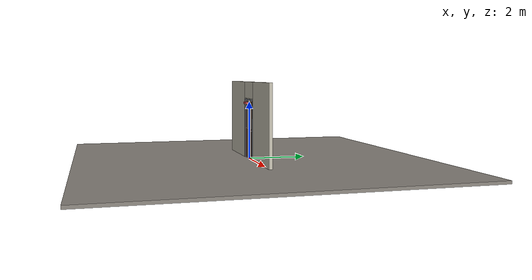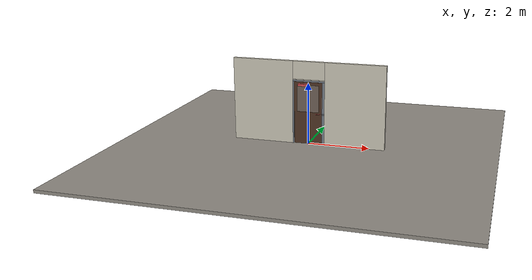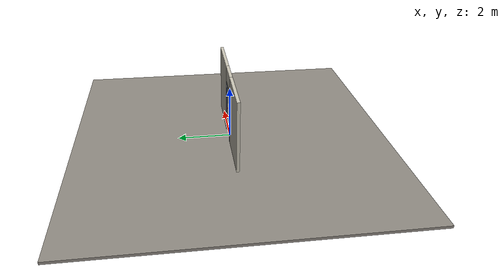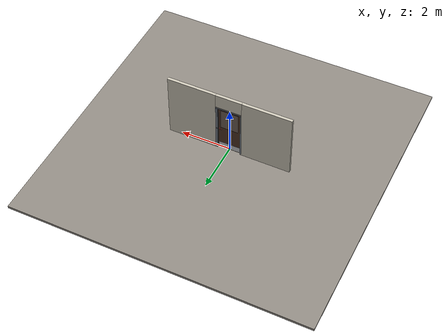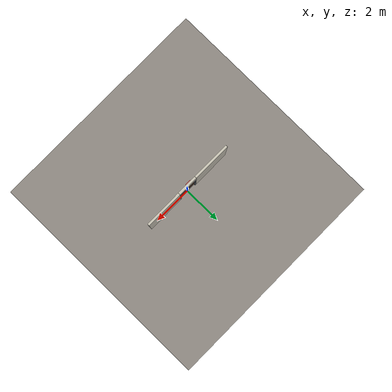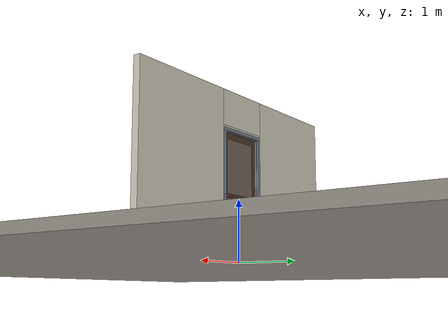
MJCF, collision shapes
<?xml version="1.0" ?>
<mujoco model="db0826_swing_single_simple">
  <compiler angle="radian" meshdir="../../hardware" texturedir="../../textures" autolimits="true" inertiafromgeom="false"/>
  <option timestep="0.002" integrator="implicitfast" cone="elliptic" impratio="10" noslip_iterations="3">
    <flag multiccd="enable"/>
  </option>
  <size memory="16M"/>
  <default>
    <geom condim="4" solref="0.005 1" solimp="0.95 0.99 0.001"/>
    <joint solreflimit="0.005 1" solimplimit="0.95 0.99 0.001"/>
    <tendon solreflimit="0.005 1"/>
    <equality solref="0.002 1"/>
  </default>
  <visual>
    <headlight ambient="0.4 0.4 0.4" diffuse="0.7 0.7 0.7" specular="0.2 0.2 0.2"/>
    <quality shadowsize="4096"/>
    <map znear="0.01" zfar="60"/>
  </visual>
  <asset>
    <mesh name="closer_body_fdc4667657" file="closer_body_fdc4667657.obj"/>
    <mesh name="hinge_1cb808d647" file="hinge_1cb808d647.obj"/>
    <mesh name="hinge_jamb_7842e12854" file="hinge_jamb_7842e12854.obj"/>
    <mesh name="lever_6268dcb28c" file="lever_6268dcb28c.obj"/>
    <material name="mat_floor" rgba="0.55 0.53 0.5 1" specular="0.2" shininess="0.15" reflectance="0"/>
    <material name="mat_wall" rgba="0.78 0.76 0.7 1" specular="0.2" shininess="0.1" reflectance="0"/>
    <material name="mat_leaf" rgba="0.3 0.2 0.14 1" specular="0.2" shininess="0.34" reflectance="0"/>
    <material name="mat_glass" rgba="0.85 0.92 0.95 0.25" specular="0.2" shininess="0.95" reflectance="0.1"/>
    <material name="mat_hinge" rgba="0.65 0.66 0.68 1" specular="0.74" shininess="0.5" reflectance="0.36"/>
    <material name="mat_op_stainless" rgba="0.75 0.76 0.77 1" specular="0.8" shininess="0.65" reflectance="0.4"/>
    <material name="mat_trim" rgba="0.85 0.66 0.3 1" specular="0.8" shininess="0.75" reflectance="0.4"/>
    <material name="mat_bolt" rgba="0.85 0.66 0.3 1" specular="0.8" shininess="0.75" reflectance="0.4"/>
    <material name="mat_frame" rgba="0.45 0.48 0.52 1" specular="0.32" shininess="0.6" reflectance="0.08"/>
    <material name="mat_closer" rgba="0.22 0.17 0.13 1" specular="0.8" shininess="0.6" reflectance="0.4"/>
    <material name="mat_kick" rgba="0.75 0.76 0.77 1" specular="0.8" shininess="0.65" reflectance="0.4"/>
    <texture name="skybox" type="skybox" builtin="gradient" rgb1="0.6 0.7 0.85" rgb2="0.9 0.92 0.95" width="256" height="256"/>
  </asset>
  <worldbody>
    <light name="sun" pos="1.5 -2.5 4" dir="-0.3 0.5 -0.8" directional="true" diffuse="0.8 0.8 0.8" specular="0.3 0.3 0.3" castshadow="true"/>
    <light name="fill" pos="-1.5 2.5 3" dir="0.3 -0.5 -0.7" directional="true" diffuse="0.35 0.35 0.4" castshadow="false"/>
    <camera name="robot_view" pos="0 -2.513687 1.734312" xyaxes="1 0 0 0 0.26963 0.962964" fovy="52"/>
    <camera name="far_view" pos="0 2.570688 1.734312" xyaxes="-1 0 0 0 -0.26963 0.962964" fovy="52"/>
    <camera name="iso" pos="1.932062 -2.106937 2.141063" xyaxes="0.741536 0.670913 0 -0.242917 0.268487 0.932151" fovy="46"/>
    <camera name="detail_handle" pos="0.4705 -0.877 1.296" xyaxes="0.97561 0.219512 0 -0.070934 0.315262 0.94635" fovy="38"/>
    <geom name="floor" type="box" size="6 6 0.05" pos="0 0 -0.05" material="mat_floor" group="0" contype="1" conaffinity="1" friction="0.8 0.005 0.0001" density="2400"/>
    <geom name="wall_left" type="box" size="0.99475 0.0575 1.35" pos="-1.50525 0.0285 1.35" material="mat_wall" group="0" contype="1" conaffinity="1" friction="0.6 0.005 0.0001" density="800"/>
    <geom name="wall_right" type="box" size="0.97975 0.0575 1.35" pos="1.52025 0.0285 1.35" material="mat_wall" group="0" contype="1" conaffinity="1" friction="0.6 0.005 0.0001" density="800"/>
    <geom name="wall_header" type="box" size="0.5255 0.0575 0.2875" pos="0.015 0.0285 2.4125" material="mat_wall" group="0" contype="1" conaffinity="1" friction="0.6 0.005 0.0001" density="800"/>
    <geom name="hinge_0_jamb" type="mesh" mesh="hinge_jamb_7842e12854" pos="-0.4575 -0.029 0.259" material="mat_hinge" group="1" contype="0" conaffinity="0" density="7850"/>
    <geom name="hinge_1_jamb" type="mesh" mesh="hinge_jamb_7842e12854" pos="-0.4575 -0.029 1.025" material="mat_hinge" group="1" contype="0" conaffinity="0" density="7850"/>
    <geom name="hinge_2_jamb" type="mesh" mesh="hinge_jamb_7842e12854" pos="-0.4575 -0.029 1.861" material="mat_hinge" group="1" contype="0" conaffinity="0" density="7850"/>
    <geom name="jamb_hinge" type="box" size="0.025 0.0575 1.0225" pos="-0.4855 0.0285 1.0225" material="mat_frame" group="0" contype="1" conaffinity="1" friction="0.6 0.005 0.0001" density="300"/>
    <geom name="strike_1016_wall_n" type="box" size="0.04 0.03825 0.0183" pos="0.5005 0.04775 1.016" material="mat_frame" group="0" contype="1" conaffinity="1" friction="0.6 0.005 0.0001" density="300"/>
    <geom name="strike_1016_wall_p" type="box" size="0.04 0.008 0.0183" pos="0.5005 -0.0175 1.016" material="mat_frame" group="0" contype="1" conaffinity="1" friction="0.6 0.005 0.0001" density="300"/>
    <geom name="strike_1016_ramp" type="box" size="0.04 0.018028 0.0183" pos="0.503782 -0.018312 1.016" quat="0.957092 0 0 0.289784" material="mat_frame" group="0" contype="1" conaffinity="1" friction="0.12 0.005 0.0001" density="300"/>
    <geom name="strike_1016_back" type="box" size="0.0285 0.0095 0.0183" pos="0.512 0 1.016" material="mat_frame" group="0" contype="1" conaffinity="1" friction="0.6 0.005 0.0001" density="300"/>
    <geom name="jamb_strike_0" type="box" size="0.04 0.0575 0.49885" pos="0.5005 0.0285 0.49885" material="mat_frame" group="0" contype="1" conaffinity="1" friction="0.6 0.005 0.0001" density="300"/>
    <geom name="jamb_strike_1" type="box" size="0.04 0.0575 0.50535" pos="0.5005 0.0285 1.53965" material="mat_frame" group="0" contype="1" conaffinity="1" friction="0.6 0.005 0.0001" density="300"/>
    <geom name="jamb_head" type="box" size="0.5255 0.0575 0.025" pos="0.015 0.0285 2.07" material="mat_frame" group="0" contype="1" conaffinity="1" friction="0.6 0.005 0.0001" density="300"/>
    <geom name="head_stud" type="box" size="0.5255 0.0575 0.015" pos="0.015 0.0285 2.11" material="mat_wall" group="0" contype="1" conaffinity="1" friction="0.6 0.005 0.0001" density="500"/>
    <geom name="stop_hinge" type="box" size="0.0055 0.016 1.0225" pos="-0.455 0.0385 1.0225" material="mat_frame" group="0" contype="1" conaffinity="1" friction="0.6 0.005 0.0001" density="300"/>
    <geom name="stop_strike" type="box" size="0.0055 0.016 1.0225" pos="0.455 0.0385 1.0225" material="mat_frame" group="0" contype="1" conaffinity="1" friction="0.6 0.005 0.0001" density="300"/>
    <geom name="stop_head" type="box" size="0.4605 0.016 0.0055" pos="0 0.0385 2.0395" material="mat_frame" group="0" contype="1" conaffinity="1" friction="0.6 0.005 0.0001" density="300"/>
    <site name="approach_point" pos="0 -1.5 0" quat="1 0 0 0" size="0.05" rgba="0.2 0.9 0.2 0.5" group="4"/>
    <site name="goal_point" pos="0 1.5 0" quat="1 0 0 0" size="0.05" rgba="0.2 0.9 0.2 0.5" group="4"/>
    <site name="door_plane_center" pos="0 0 1.0225" quat="1 0 0 0" size="0.02" rgba="0.2 0.9 0.2 0.5" group="4"/>
    <body name="leaf" pos="-0.4605 0 0">
      <inertial pos="0.41573 -0.017125 1.216101" mass="56.089685" quat="-0.494817 0.468407 0.515429 0.519696" diaginertia="3.268739291 25.81439493 28.985503653"/>
      <joint name="leaf_hinge" type="hinge" axis="0 0 -1" pos="0.003 -0.029 0" limited="true" range="0 1.570796" damping="12.25611" frictionloss="1.115532" stiffness="11.567381" springref="-1.882881" armature="0.02"/>
      <geom name="leaf_slab" type="box" size="0.457 0.022 1.016" pos="0.46 0 1.025" material="mat_leaf" group="0" contype="1" conaffinity="1" friction="0.35 0.005 0.0001" density="1"/>
      <geom name="leaf_glass_0" type="box" size="0.35646 0.0228 0.43688" pos="0.46 0 1.50252" material="mat_glass" group="1" contype="0" conaffinity="0" density="1"/>
      <geom name="hinge_0" type="mesh" mesh="hinge_1cb808d647" pos="0.003 -0.029 0.259" material="mat_hinge" group="1" contype="0" conaffinity="0" density="7850"/>
      <geom name="hinge_1" type="mesh" mesh="hinge_1cb808d647" pos="0.003 -0.029 1.025" material="mat_hinge" group="1" contype="0" conaffinity="0" density="7850"/>
      <geom name="hinge_2" type="mesh" mesh="hinge_1cb808d647" pos="0.003 -0.029 1.861" material="mat_hinge" group="1" contype="0" conaffinity="0" density="7850"/>
      <geom name="leaf_latch_bolt_faceplate" type="box" size="0.0006 0.014 0.0283" pos="0.9164 0 1.016" material="mat_bolt" group="1" contype="0" conaffinity="0" density="8500"/>
      <geom name="closer_body" type="mesh" mesh="closer_body_fdc4667657" pos="0.3 -0.022 1.952" quat="0.707107 0.707107 0 0" material="mat_closer" group="1" contype="0" conaffinity="0" density="2000"/>
      <geom name="closer_body_col" type="box" size="0.145 0.05 0.035" pos="0.3 -0.072 1.952" material="mat_closer" group="3" contype="1" conaffinity="1" rgba="0.8 0.3 0.3 0.25" friction="0.6 0.005 0.0001" density="2000"/>
      <geom name="kick_plate_p" type="box" size="0.427 0.0008 0.125" pos="0.46 0.0228 0.144" material="mat_kick" group="2" contype="0" conaffinity="0" density="7900"/>
      <site name="leaf_edge_mid" pos="0.917 0 1.016" quat="1 0 0 0" size="0.02" rgba="0.2 0.9 0.2 0.5" group="4"/>
      <body name="leaf_handle" pos="0.847 0 1.016">
        <inertial pos="-0.03705 0 0" mass="0.984967" quat="0 0.707107 0.707107 0" diaginertia="0.002278035 0.00380889 0.005520856"/>
        <joint name="leaf_handle_hinge" type="hinge" axis="0 -1 0" limited="true" range="0 0.96" damping="0.255791" frictionloss="0.05" stiffness="1.2" springref="-0.583333" armature="0.01"/>
        <geom name="leaf_handle_lever_n" type="mesh" mesh="lever_6268dcb28c" pos="0 -0.022 0" quat="0.707107 0.707107 0 0" material="mat_op_stainless" group="1" contype="0" conaffinity="0" density="3000"/>
        <geom name="leaf_handle_lever_col_n" type="capsule" size="0.0095 0.0505" pos="-0.06 -0.077 0" quat="0.707107 0 -0.707107 0" material="mat_op_stainless" group="3" contype="1" conaffinity="1" rgba="0.8 0.3 0.3 0.25" friction="0.7 0.01 0.0001" density="3000"/>
        <geom name="leaf_handle_hub_col_n" type="cylinder" size="0.012 0.022" pos="0 -0.052 0" quat="0.707107 -0.707107 0 0" material="mat_op_stainless" group="3" contype="1" conaffinity="1" rgba="0.8 0.3 0.3 0.25" friction="0.6 0.005 0.0001" density="3000"/>
        <geom name="leaf_handle_lever_p" type="mesh" mesh="lever_6268dcb28c" pos="0 0.022 0" quat="-0.707107 0.707107 0 0" material="mat_op_stainless" group="1" contype="0" conaffinity="0" density="3000"/>
        <geom name="leaf_handle_lever_col_p" type="capsule" size="0.0095 0.0505" pos="-0.06 0.077 0" quat="0.707107 0 -0.707107 0" material="mat_op_stainless" group="3" contype="1" conaffinity="1" rgba="0.8 0.3 0.3 0.25" friction="0.7 0.01 0.0001" density="3000"/>
        <geom name="leaf_handle_hub_col_p" type="cylinder" size="0.012 0.022" pos="0 0.052 0" quat="0.707107 -0.707107 0 0" material="mat_op_stainless" group="3" contype="1" conaffinity="1" rgba="0.8 0.3 0.3 0.25" friction="0.6 0.005 0.0001" density="3000"/>
        <site name="leaf_handle_grip_n" pos="-0.096 -0.077 0" quat="1 0 0 0" size="0.012" rgba="0.2 0.9 0.2 0.5" group="4"/>
        <site name="leaf_handle_grip_p" pos="-0.096 0.077 0" quat="1 0 0 0" size="0.012" rgba="0.2 0.9 0.2 0.5" group="4"/>
      </body>
      <body name="leaf_latch_bolt" pos="0.917 0 1.016">
        <inertial pos="-0.0055 0 0" mass="0.074627" quat="0.92388 -0.382683 0 0" diaginertia="0.000002271 0.000013255 0.000013255"/>
        <joint name="leaf_latch_bolt_slide" type="slide" axis="-1 0 0" limited="true" range="0 0.019" damping="2" frictionloss="0.3" stiffness="600" springref="-0.01" armature="0.1"/>
        <geom name="leaf_latch_bolt_capsule" type="capsule" size="0.008 0.0165" pos="-0.0055 0 0" quat="0.707107 0 0.707107 0" material="mat_bolt" group="0" contype="1" conaffinity="1" friction="0.2 0.005 0.0001" density="8500"/>
      </body>
    </body>
  </worldbody>
  <tendon>
    <fixed name="leaf_latch_bolt_coupling" limited="true" range="0 10">
      <joint joint="leaf_latch_bolt_slide" coef="1"/>
      <joint joint="leaf_handle_hinge" coef="-0.020879"/>
    </fixed>
  </tendon>
  <sensor>
    <jointpos name="leaf_hinge_pos" joint="leaf_hinge"/>
    <jointvel name="leaf_hinge_vel" joint="leaf_hinge"/>
    <jointpos name="leaf_handle_hinge_pos" joint="leaf_handle_hinge"/>
    <jointvel name="leaf_handle_hinge_vel" joint="leaf_handle_hinge"/>
    <jointpos name="leaf_latch_bolt_slide_pos" joint="leaf_latch_bolt_slide"/>
    <jointvel name="leaf_latch_bolt_slide_vel" joint="leaf_latch_bolt_slide"/>
  </sensor>
</mujoco>
